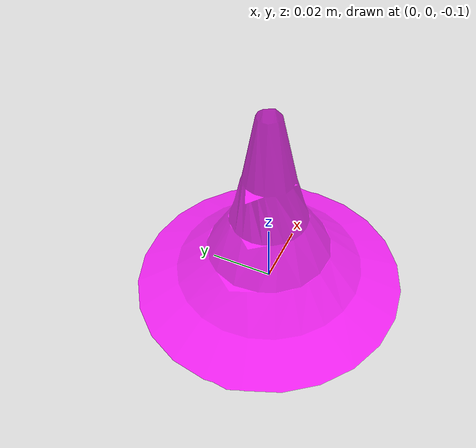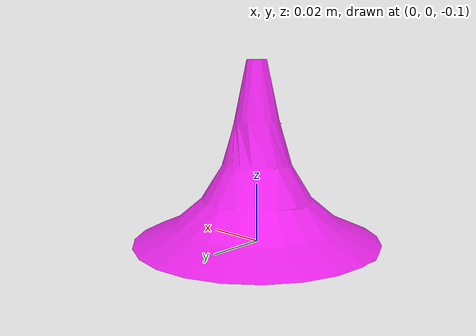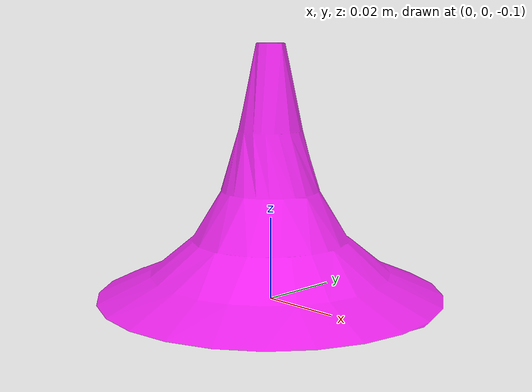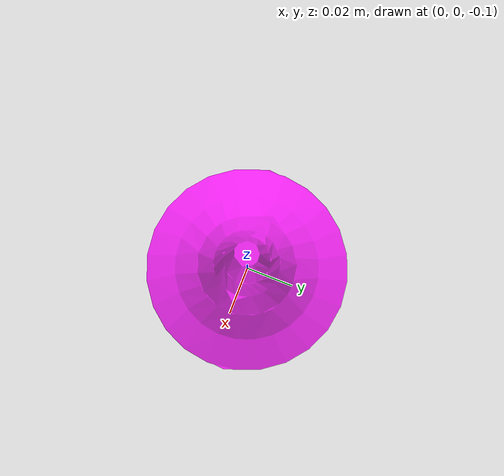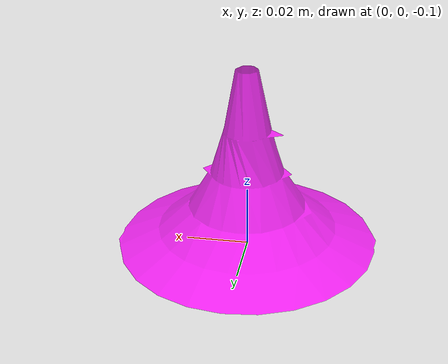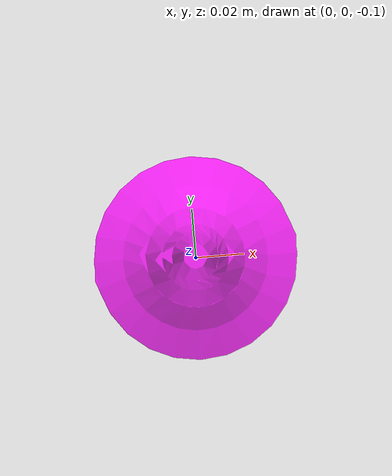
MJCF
<mujoco model="bottom_watertight_tiny">
  <default>
    <default group="2" type="mesh" contype="0" conaffinity="0">
      <geom group="2" type="mesh" contype="0" conaffinity="0"/>
    </default>
    <default group="3" type="mesh">
      <geom group="3" type="mesh"/>
    </default>
  </default>
  <asset>
    <mesh file="bottom_watertight_tiny.obj"/>
    <mesh file="bottom_watertight_tiny_collision_0.obj"/>
    <mesh file="bottom_watertight_tiny_collision_1.obj"/>
    <mesh file="bottom_watertight_tiny_collision_2.obj"/>
    <mesh file="bottom_watertight_tiny_collision_3.obj"/>
    <mesh file="bottom_watertight_tiny_collision_4.obj"/>
    <mesh file="bottom_watertight_tiny_collision_5.obj"/>
    <mesh file="bottom_watertight_tiny_collision_6.obj"/>
    <mesh file="bottom_watertight_tiny_collision_7.obj"/>
    <mesh file="bottom_watertight_tiny_collision_8.obj"/>
    <mesh file="bottom_watertight_tiny_collision_9.obj"/>
    <mesh file="bottom_watertight_tiny_collision_10.obj"/>
    <mesh file="bottom_watertight_tiny_collision_11.obj"/>
    <mesh file="bottom_watertight_tiny_collision_12.obj"/>
    <mesh file="bottom_watertight_tiny_collision_13.obj"/>
    <mesh file="bottom_watertight_tiny_collision_14.obj"/>
    <mesh file="bottom_watertight_tiny_collision_15.obj"/>
    <mesh file="bottom_watertight_tiny_collision_16.obj"/>
    <mesh file="bottom_watertight_tiny_collision_17.obj"/>
    <mesh file="bottom_watertight_tiny_collision_18.obj"/>
    <mesh file="bottom_watertight_tiny_collision_19.obj"/>
    <mesh file="bottom_watertight_tiny_collision_20.obj"/>
    <mesh file="bottom_watertight_tiny_collision_21.obj"/>
    <mesh file="bottom_watertight_tiny_collision_22.obj"/>
    <mesh file="bottom_watertight_tiny_collision_23.obj"/>
    <mesh file="bottom_watertight_tiny_collision_24.obj"/>
  </asset>
  <worldbody>
    <body name="bottom_watertight_tiny">
      <freejoint/>
      <geom mesh="bottom_watertight_tiny" group="2" type="mesh" rgba="1 0 1 0.8" contype="0" conaffinity="0"/>
      <geom mesh="bottom_watertight_tiny_collision_0" rgba="0.5206752236920137 0.9148760650420463 0.6457667484245997 1" group="3" type="mesh"/>
      <geom mesh="bottom_watertight_tiny_collision_1" rgba="0.4826957552973832 0.018273340236024227 0.31880729373566086 1" group="3" type="mesh"/>
      <geom mesh="bottom_watertight_tiny_collision_2" rgba="0.4129709285513007 0.08484758098655654 0.28438492873805143 1" group="3" type="mesh"/>
      <geom mesh="bottom_watertight_tiny_collision_3" rgba="0.3535051950620831 0.307961609064459 0.6441520508785427 1" group="3" type="mesh"/>
      <geom mesh="bottom_watertight_tiny_collision_4" rgba="0.9198731883195904 0.5299000541519732 0.9409336540186441 1" group="3" type="mesh"/>
      <geom mesh="bottom_watertight_tiny_collision_5" rgba="0.9706679270755393 0.3848044775295504 0.030127862056882893 1" group="3" type="mesh"/>
      <geom mesh="bottom_watertight_tiny_collision_6" rgba="0.9874873428565522 0.8888866947094992 0.836779214231055 1" group="3" type="mesh"/>
      <geom mesh="bottom_watertight_tiny_collision_7" rgba="0.036383549814640315 0.6895370309665949 0.6593501386108649 1" group="3" type="mesh"/>
      <geom mesh="bottom_watertight_tiny_collision_8" rgba="0.3787728032101795 0.7249321198566804 0.6616760003288931 1" group="3" type="mesh"/>
      <geom mesh="bottom_watertight_tiny_collision_9" rgba="0.48191211479896745 0.41767285834429235 0.6511232680295174 1" group="3" type="mesh"/>
      <geom mesh="bottom_watertight_tiny_collision_10" rgba="0.6615176532478307 0.586590983531861 0.6973145642586989 1" group="3" type="mesh"/>
      <geom mesh="bottom_watertight_tiny_collision_11" rgba="0.09132403929414046 0.06692965557192487 0.8990169064084078 1" group="3" type="mesh"/>
      <geom mesh="bottom_watertight_tiny_collision_12" rgba="0.8747799296440874 0.11913679315894254 0.9719786088182184 1" group="3" type="mesh"/>
      <geom mesh="bottom_watertight_tiny_collision_13" rgba="0.4744508286284088 0.29994367872486105 0.44567208486517895 1" group="3" type="mesh"/>
      <geom mesh="bottom_watertight_tiny_collision_14" rgba="0.7108836687091518 0.5066853708204934 0.43776201088176336 1" group="3" type="mesh"/>
      <geom mesh="bottom_watertight_tiny_collision_15" rgba="0.19436125216023836 0.19690377300960882 0.07564505874676597 1" group="3" type="mesh"/>
      <geom mesh="bottom_watertight_tiny_collision_16" rgba="0.4882520474452642 0.4493160148515942 0.11994735140036705 1" group="3" type="mesh"/>
      <geom mesh="bottom_watertight_tiny_collision_17" rgba="0.8283064327321107 0.7763314337214579 0.1697397376918739 1" group="3" type="mesh"/>
      <geom mesh="bottom_watertight_tiny_collision_18" rgba="0.7073792406760349 0.8586641439302066 0.5949726469114632 1" group="3" type="mesh"/>
      <geom mesh="bottom_watertight_tiny_collision_19" rgba="0.8547107415599748 0.3546815367123458 0.8290544019112942 1" group="3" type="mesh"/>
      <geom mesh="bottom_watertight_tiny_collision_20" rgba="0.8684665371880523 0.4772055843226132 0.997857957798704 1" group="3" type="mesh"/>
      <geom mesh="bottom_watertight_tiny_collision_21" rgba="0.701931746904148 0.864273792495655 0.6275480783582438 1" group="3" type="mesh"/>
      <geom mesh="bottom_watertight_tiny_collision_22" rgba="0.31011889427799777 0.10428681274310059 0.9452195742635281 1" group="3" type="mesh"/>
      <geom mesh="bottom_watertight_tiny_collision_23" rgba="0.8830221682885634 0.2678517144714049 0.6991687943033088 1" group="3" type="mesh"/>
      <geom mesh="bottom_watertight_tiny_collision_24" rgba="0.0034077294137152547 0.9981991293802934 0.6945929866110676 1" group="3" type="mesh"/>
    </body>
  </worldbody>
</mujoco>
